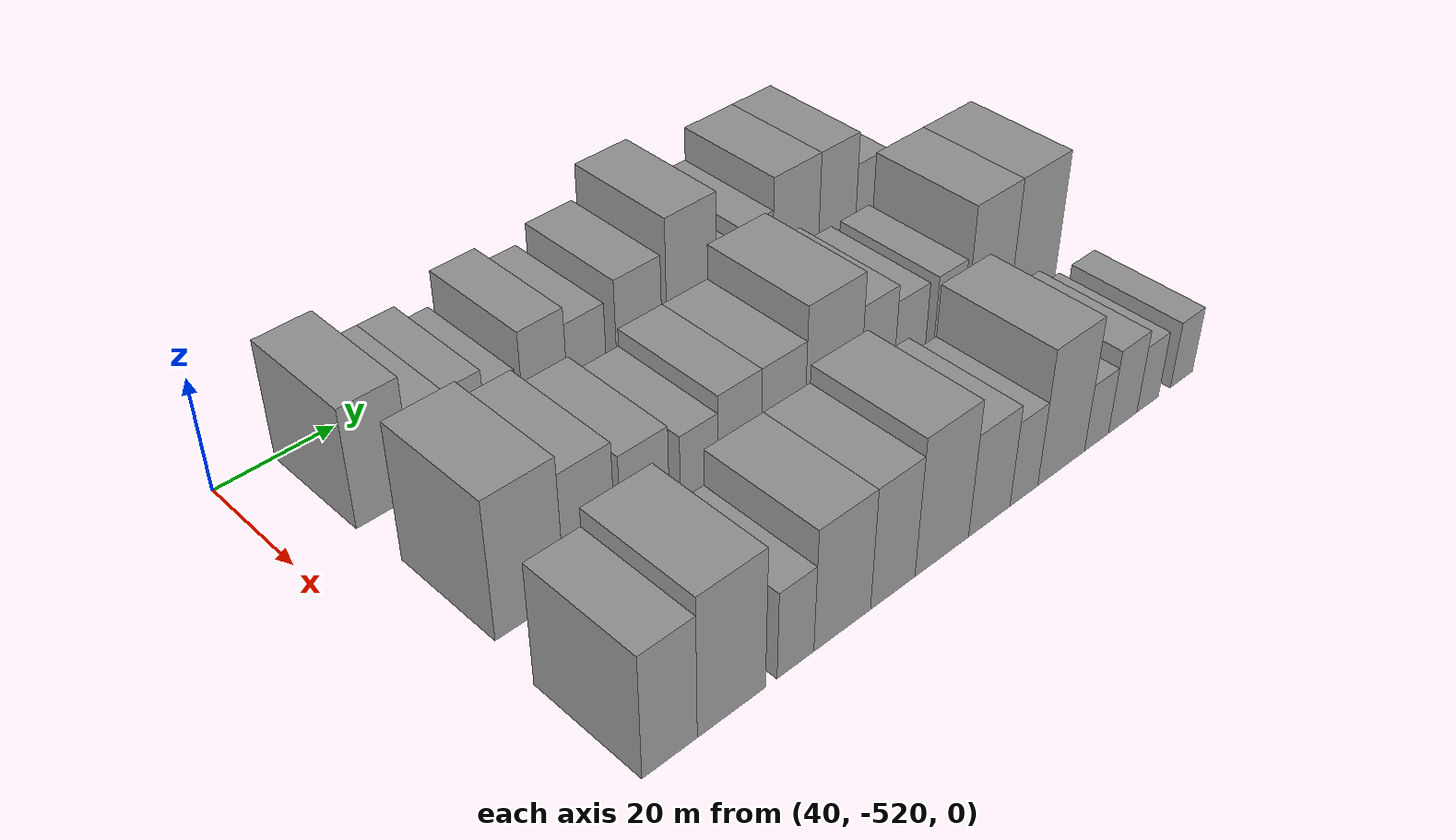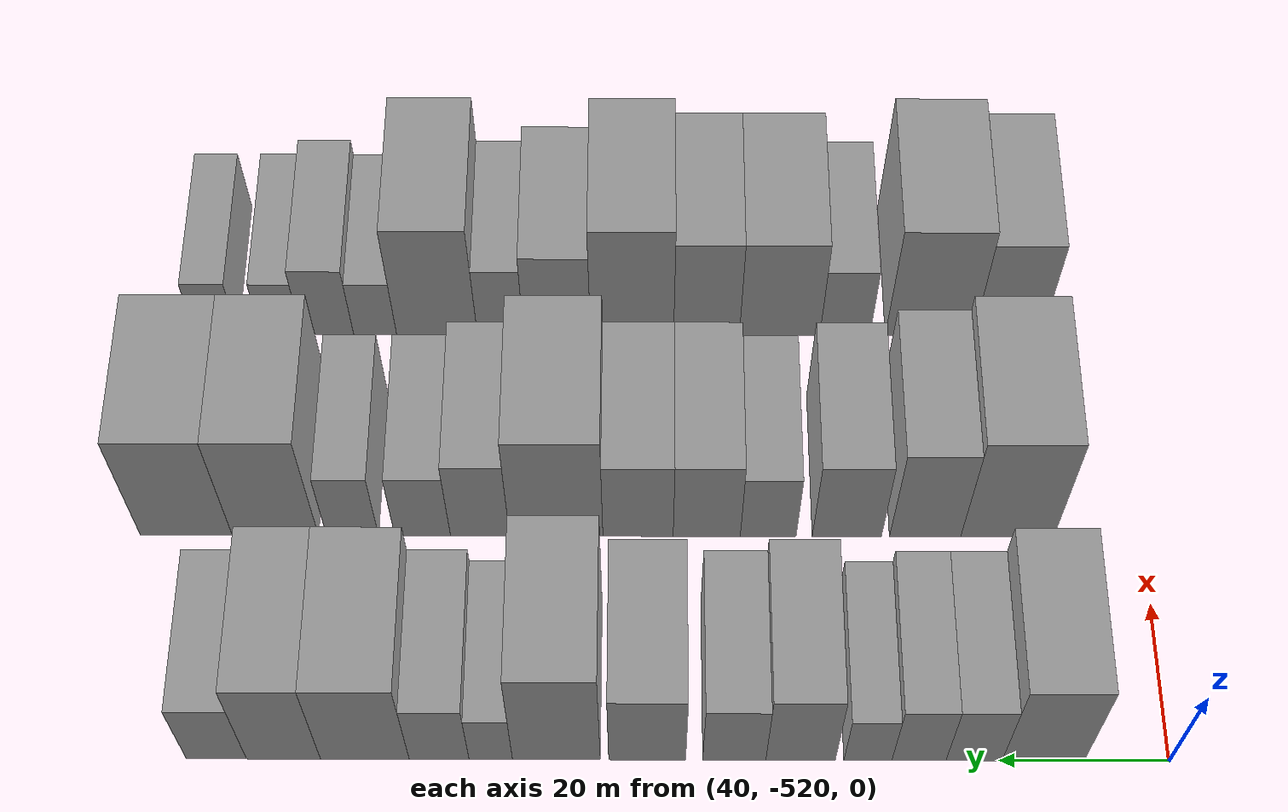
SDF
<sdf version="1.6">
 <world name="default">
  <model name="building_1">
   <static>1</static>
   <pose>50.0000 -505.1877 0 0.000000 0.000000 0.000000</pose>
   <link name="link">
    <pose>0 0 10.50 0 0 0</pose>
    <collision name="collision"><geometry><box><size>20.0000 9.6246 21.0000</size></box></geometry></collision>
    <visual name="visual">
     <cast_shadows>0</cast_shadows>
     <geometry><box><size>20.0000 9.6246 21.0000</size></box></geometry>
     <material>
      <script>
       <uri>model://grey_wall/materials/scripts</uri>
       <uri>model://grey_wall/materials/textures</uri>
       <name>vrc/grey_wall</name>
      </script>
     </material>
    </visual>
   </link>
  </model>
  <model name="building_2">
   <static>1</static>
   <pose>50.0000 -497.0915 0 0.000000 0.000000 0.000000</pose>
   <link name="link">
    <pose>0 0 7.50 0 0 0</pose>
    <collision name="collision"><geometry><box><size>20.0000 6.5677 15.0000</size></box></geometry></collision>
    <visual name="visual">
     <cast_shadows>0</cast_shadows>
     <geometry><box><size>20.0000 6.5677 15.0000</size></box></geometry>
     <material>
      <script>
       <uri>model://grey_wall/materials/scripts</uri>
       <uri>model://grey_wall/materials/textures</uri>
       <name>vrc/grey_wall</name>
      </script>
     </material>
    </visual>
   </link>
  </model>
  <model name="building_3">
   <static>1</static>
   <pose>50.0000 -490.6406 0 0.000000 0.000000 0.000000</pose>
   <link name="link">
    <pose>0 0 7.50 0 0 0</pose>
    <collision name="collision"><geometry><box><size>20.0000 6.3341 15.0000</size></box></geometry></collision>
    <visual name="visual">
     <cast_shadows>0</cast_shadows>
     <geometry><box><size>20.0000 6.3341 15.0000</size></box></geometry>
     <material>
      <script>
       <uri>model://grey_wall/materials/scripts</uri>
       <uri>model://grey_wall/materials/textures</uri>
       <name>vrc/grey_wall</name>
      </script>
     </material>
    </visual>
   </link>
  </model>
  <model name="building_4">
   <static>1</static>
   <pose>50.0000 -484.6623 0 0.000000 0.000000 0.000000</pose>
   <link name="link">
    <pose>0 0 6.00 0 0 0</pose>
    <collision name="collision"><geometry><box><size>20.0000 5.6226 12.0000</size></box></geometry></collision>
    <visual name="visual">
     <cast_shadows>0</cast_shadows>
     <geometry><box><size>20.0000 5.6226 12.0000</size></box></geometry>
     <material>
      <script>
       <uri>model://grey_wall/materials/scripts</uri>
       <uri>model://grey_wall/materials/textures</uri>
       <name>vrc/grey_wall</name>
      </script>
     </material>
    </visual>
   </link>
  </model>
  <model name="building_5">
   <static>1</static>
   <pose>50.0000 -476.7808 0 0.000000 0.000000 0.000000</pose>
   <link name="link">
    <pose>0 0 9.00 0 0 0</pose>
    <collision name="collision"><geometry><box><size>20.0000 8.1402 18.0000</size></box></geometry></collision>
    <visual name="visual">
     <cast_shadows>0</cast_shadows>
     <geometry><box><size>20.0000 8.1402 18.0000</size></box></geometry>
     <material>
      <script>
       <uri>model://grey_wall/materials/scripts</uri>
       <uri>model://grey_wall/materials/textures</uri>
       <name>vrc/grey_wall</name>
      </script>
     </material>
    </visual>
   </link>
  </model>
  <model name="building_6">
   <static>1</static>
   <pose>50.0000 -469.0146 0 0.000000 0.000000 0.000000</pose>
   <link name="link">
    <pose>0 0 7.50 0 0 0</pose>
    <collision name="collision"><geometry><box><size>20.0000 7.3923 15.0000</size></box></geometry></collision>
    <visual name="visual">
     <cast_shadows>0</cast_shadows>
     <geometry><box><size>20.0000 7.3923 15.0000</size></box></geometry>
     <material>
      <script>
       <uri>model://grey_wall/materials/scripts</uri>
       <uri>model://grey_wall/materials/textures</uri>
       <name>vrc/grey_wall</name>
      </script>
     </material>
    </visual>
   </link>
  </model>
  <model name="building_7">
   <static>1</static>
   <pose>50.0000 -458.8198 0 0.000000 0.000000 0.000000</pose>
   <link name="link">
    <pose>0 0 9.00 0 0 0</pose>
    <collision name="collision"><geometry><box><size>20.0000 8.9973 18.0000</size></box></geometry></collision>
    <visual name="visual">
     <cast_shadows>0</cast_shadows>
     <geometry><box><size>20.0000 8.9973 18.0000</size></box></geometry>
     <material>
      <script>
       <uri>model://grey_wall/materials/scripts</uri>
       <uri>model://grey_wall/materials/textures</uri>
       <name>vrc/grey_wall</name>
      </script>
     </material>
    </visual>
   </link>
  </model>
  <model name="building_8">
   <static>1</static>
   <pose>50.0000 -448.1830 0 0.000000 0.000000 0.000000</pose>
   <link name="link">
    <pose>0 0 12.00 0 0 0</pose>
    <collision name="collision"><geometry><box><size>20.0000 10.2763 24.0000</size></box></geometry></collision>
    <visual name="visual">
     <cast_shadows>0</cast_shadows>
     <geometry><box><size>20.0000 10.2763 24.0000</size></box></geometry>
     <material>
      <script>
       <uri>model://grey_wall/materials/scripts</uri>
       <uri>model://grey_wall/materials/textures</uri>
       <name>vrc/grey_wall</name>
      </script>
     </material>
    </visual>
   </link>
  </model>
  <model name="building_9">
   <static>1</static>
   <pose>50.0000 -440.5058 0 0.000000 0.000000 0.000000</pose>
   <link name="link">
    <pose>0 0 6.00 0 0 0</pose>
    <collision name="collision"><geometry><box><size>20.0000 5.0780 12.0000</size></box></geometry></collision>
    <visual name="visual">
     <cast_shadows>0</cast_shadows>
     <geometry><box><size>20.0000 5.0780 12.0000</size></box></geometry>
     <material>
      <script>
       <uri>model://grey_wall/materials/scripts</uri>
       <uri>model://grey_wall/materials/textures</uri>
       <name>vrc/grey_wall</name>
      </script>
     </material>
    </visual>
   </link>
  </model>
  <model name="building_10">
   <static>1</static>
   <pose>50.0000 -434.4570 0 0.000000 0.000000 0.000000</pose>
   <link name="link">
    <pose>0 0 7.50 0 0 0</pose>
    <collision name="collision"><geometry><box><size>20.0000 7.0197 15.0000</size></box></geometry></collision>
    <visual name="visual">
     <cast_shadows>0</cast_shadows>
     <geometry><box><size>20.0000 7.0197 15.0000</size></box></geometry>
     <material>
      <script>
       <uri>model://grey_wall/materials/scripts</uri>
       <uri>model://grey_wall/materials/textures</uri>
       <name>vrc/grey_wall</name>
      </script>
     </material>
    </visual>
   </link>
  </model>
  <model name="building_11">
   <static>1</static>
   <pose>50.0000 -425.7513 0 0.000000 0.000000 0.000000</pose>
   <link name="link">
    <pose>0 0 10.50 0 0 0</pose>
    <collision name="collision"><geometry><box><size>20.0000 10.3918 21.0000</size></box></geometry></collision>
    <visual name="visual">
     <cast_shadows>0</cast_shadows>
     <geometry><box><size>20.0000 10.3918 21.0000</size></box></geometry>
     <material>
      <script>
       <uri>model://grey_wall/materials/scripts</uri>
       <uri>model://grey_wall/materials/textures</uri>
       <name>vrc/grey_wall</name>
      </script>
     </material>
    </visual>
   </link>
  </model>
  <model name="building_12">
   <static>1</static>
   <pose>50.0000 -416.2189 0 0.000000 0.000000 0.000000</pose>
   <link name="link">
    <pose>0 0 10.50 0 0 0</pose>
    <collision name="collision"><geometry><box><size>20.0000 8.6729 21.0000</size></box></geometry></collision>
    <visual name="visual">
     <cast_shadows>0</cast_shadows>
     <geometry><box><size>20.0000 8.6729 21.0000</size></box></geometry>
     <material>
      <script>
       <uri>model://grey_wall/materials/scripts</uri>
       <uri>model://grey_wall/materials/textures</uri>
       <name>vrc/grey_wall</name>
      </script>
     </material>
    </visual>
   </link>
  </model>
  <model name="building_13">
   <static>1</static>
   <pose>50.0000 -408.3630 0 0.000000 0.000000 0.000000</pose>
   <link name="link">
    <pose>0 0 7.50 0 0 0</pose>
    <collision name="collision"><geometry><box><size>20.0000 7.0390 15.0000</size></box></geometry></collision>
    <visual name="visual">
     <cast_shadows>0</cast_shadows>
     <geometry><box><size>20.0000 7.0390 15.0000</size></box></geometry>
     <material>
      <script>
       <uri>model://grey_wall/materials/scripts</uri>
       <uri>model://grey_wall/materials/textures</uri>
       <name>vrc/grey_wall</name>
      </script>
     </material>
    </visual>
   </link>
  </model>
  <model name="building_115">
   <static>1</static>
   <pose>79.0000 -503.2548 0 0.000000 0.000000 0.000000</pose>
   <link name="link">
    <pose>0 0 12.00 0 0 0</pose>
    <collision name="collision"><geometry><box><size>20.0000 11.4904 24.0000</size></box></geometry></collision>
    <visual name="visual">
     <cast_shadows>0</cast_shadows>
     <geometry><box><size>20.0000 11.4904 24.0000</size></box></geometry>
     <material>
      <script>
       <uri>model://grey_wall/materials/scripts</uri>
       <uri>model://grey_wall/materials/textures</uri>
       <name>vrc/grey_wall</name>
      </script>
     </material>
    </visual>
   </link>
  </model>
  <model name="building_116">
   <static>1</static>
   <pose>79.0000 -493.1154 0 0.000000 0.000000 0.000000</pose>
   <link name="link">
    <pose>0 0 10.50 0 0 0</pose>
    <collision name="collision"><geometry><box><size>20.0000 8.7883 21.0000</size></box></geometry></collision>
    <visual name="visual">
     <cast_shadows>0</cast_shadows>
     <geometry><box><size>20.0000 8.7883 21.0000</size></box></geometry>
     <material>
      <script>
       <uri>model://grey_wall/materials/scripts</uri>
       <uri>model://grey_wall/materials/textures</uri>
       <name>vrc/grey_wall</name>
      </script>
     </material>
    </visual>
   </link>
  </model>
  <model name="building_117">
   <static>1</static>
   <pose>79.0000 -483.4463 0 0.000000 0.000000 0.000000</pose>
   <link name="link">
    <pose>0 0 9.00 0 0 0</pose>
    <collision name="collision"><geometry><box><size>20.0000 8.5500 18.0000</size></box></geometry></collision>
    <visual name="visual">
     <cast_shadows>0</cast_shadows>
     <geometry><box><size>20.0000 8.5500 18.0000</size></box></geometry>
     <material>
      <script>
       <uri>model://grey_wall/materials/scripts</uri>
       <uri>model://grey_wall/materials/textures</uri>
       <name>vrc/grey_wall</name>
      </script>
     </material>
    </visual>
   </link>
  </model>
  <model name="building_118">
   <static>1</static>
   <pose>79.0000 -473.7268 0 0.000000 0.000000 0.000000</pose>
   <link name="link">
    <pose>0 0 7.50 0 0 0</pose>
    <collision name="collision"><geometry><box><size>20.0000 6.8890 15.0000</size></box></geometry></collision>
    <visual name="visual">
     <cast_shadows>0</cast_shadows>
     <geometry><box><size>20.0000 6.8890 15.0000</size></box></geometry>
     <material>
      <script>
       <uri>model://grey_wall/materials/scripts</uri>
       <uri>model://grey_wall/materials/textures</uri>
       <name>vrc/grey_wall</name>
      </script>
     </material>
    </visual>
   </link>
  </model>
  <model name="building_119">
   <static>1</static>
   <pose>79.0000 -466.1343 0 0.000000 0.000000 0.000000</pose>
   <link name="link">
    <pose>0 0 9.00 0 0 0</pose>
    <collision name="collision"><geometry><box><size>20.0000 8.2961 18.0000</size></box></geometry></collision>
    <visual name="visual">
     <cast_shadows>0</cast_shadows>
     <geometry><box><size>20.0000 8.2961 18.0000</size></box></geometry>
     <material>
      <script>
       <uri>model://grey_wall/materials/scripts</uri>
       <uri>model://grey_wall/materials/textures</uri>
       <name>vrc/grey_wall</name>
      </script>
     </material>
    </visual>
   </link>
  </model>
  <model name="building_120">
   <static>1</static>
   <pose>79.0000 -457.6497 0 0.000000 0.000000 0.000000</pose>
   <link name="link">
    <pose>0 0 9.00 0 0 0</pose>
    <collision name="collision"><geometry><box><size>20.0000 8.6731 18.0000</size></box></geometry></collision>
    <visual name="visual">
     <cast_shadows>0</cast_shadows>
     <geometry><box><size>20.0000 8.6731 18.0000</size></box></geometry>
     <material>
      <script>
       <uri>model://grey_wall/materials/scripts</uri>
       <uri>model://grey_wall/materials/textures</uri>
       <name>vrc/grey_wall</name>
      </script>
     </material>
    </visual>
   </link>
  </model>
  <model name="building_121">
   <static>1</static>
   <pose>79.0000 -447.5465 0 0.000000 0.000000 0.000000</pose>
   <link name="link">
    <pose>0 0 12.00 0 0 0</pose>
    <collision name="collision"><geometry><box><size>20.0000 11.5332 24.0000</size></box></geometry></collision>
    <visual name="visual">
     <cast_shadows>0</cast_shadows>
     <geometry><box><size>20.0000 11.5332 24.0000</size></box></geometry>
     <material>
      <script>
       <uri>model://grey_wall/materials/scripts</uri>
       <uri>model://grey_wall/materials/textures</uri>
       <name>vrc/grey_wall</name>
      </script>
     </material>
    </visual>
   </link>
  </model>
  <model name="building_122">
   <static>1</static>
   <pose>79.0000 -438.1325 0 0.000000 0.000000 0.000000</pose>
   <link name="link">
    <pose>0 0 9.00 0 0 0</pose>
    <collision name="collision"><geometry><box><size>20.0000 7.2948 18.0000</size></box></geometry></collision>
    <visual name="visual">
     <cast_shadows>0</cast_shadows>
     <geometry><box><size>20.0000 7.2948 18.0000</size></box></geometry>
     <material>
      <script>
       <uri>model://grey_wall/materials/scripts</uri>
       <uri>model://grey_wall/materials/textures</uri>
       <name>vrc/grey_wall</name>
      </script>
     </material>
    </visual>
   </link>
  </model>
  <model name="building_123">
   <static>1</static>
   <pose>79.0000 -431.0398 0 0.000000 0.000000 0.000000</pose>
   <link name="link">
    <pose>0 0 7.50 0 0 0</pose>
    <collision name="collision"><geometry><box><size>20.0000 6.8907 15.0000</size></box></geometry></collision>
    <visual name="visual">
     <cast_shadows>0</cast_shadows>
     <geometry><box><size>20.0000 6.8907 15.0000</size></box></geometry>
     <material>
      <script>
       <uri>model://grey_wall/materials/scripts</uri>
       <uri>model://grey_wall/materials/textures</uri>
       <name>vrc/grey_wall</name>
      </script>
     </material>
    </visual>
   </link>
  </model>
  <model name="building_124">
   <static>1</static>
   <pose>79.0000 -422.3800 0 0.000000 0.000000 0.000000</pose>
   <link name="link">
    <pose>0 0 7.50 0 0 0</pose>
    <collision name="collision"><geometry><box><size>20.0000 6.4289 15.0000</size></box></geometry></collision>
    <visual name="visual">
     <cast_shadows>0</cast_shadows>
     <geometry><box><size>20.0000 6.4289 15.0000</size></box></geometry>
     <material>
      <script>
       <uri>model://grey_wall/materials/scripts</uri>
       <uri>model://grey_wall/materials/textures</uri>
       <name>vrc/grey_wall</name>
      </script>
     </material>
    </visual>
   </link>
  </model>
  <model name="building_125">
   <static>1</static>
   <pose>79.0000 -412.8363 0 0.000000 0.000000 0.000000</pose>
   <link name="link">
    <pose>0 0 12.00 0 0 0</pose>
    <collision name="collision"><geometry><box><size>20.0000 10.6585 24.0000</size></box></geometry></collision>
    <visual name="visual">
     <cast_shadows>0</cast_shadows>
     <geometry><box><size>20.0000 10.6585 24.0000</size></box></geometry>
     <material>
      <script>
       <uri>model://grey_wall/materials/scripts</uri>
       <uri>model://grey_wall/materials/textures</uri>
       <name>vrc/grey_wall</name>
      </script>
     </material>
    </visual>
   </link>
  </model>
  <model name="building_126">
   <static>1</static>
   <pose>79.0000 -401.8279 0 0.000000 0.000000 0.000000</pose>
   <link name="link">
    <pose>0 0 12.00 0 0 0</pose>
    <collision name="collision"><geometry><box><size>20.0000 11.3581 24.0000</size></box></geometry></collision>
    <visual name="visual">
     <cast_shadows>0</cast_shadows>
     <geometry><box><size>20.0000 11.3581 24.0000</size></box></geometry>
     <material>
      <script>
       <uri>model://grey_wall/materials/scripts</uri>
       <uri>model://grey_wall/materials/textures</uri>
       <name>vrc/grey_wall</name>
      </script>
     </material>
    </visual>
   </link>
  </model>
  <model name="building_229">
   <static>1</static>
   <pose>108.0000 -505.5721 0 0.000000 0.000000 0.000000</pose>
   <link name="link">
    <pose>0 0 10.50 0 0 0</pose>
    <collision name="collision"><geometry><box><size>20.0000 8.8557 21.0000</size></box></geometry></collision>
    <visual name="visual">
     <cast_shadows>0</cast_shadows>
     <geometry><box><size>20.0000 8.8557 21.0000</size></box></geometry>
     <material>
      <script>
       <uri>model://grey_wall/materials/scripts</uri>
       <uri>model://grey_wall/materials/textures</uri>
       <name>vrc/grey_wall</name>
      </script>
     </material>
    </visual>
   </link>
  </model>
  <model name="building_230">
   <static>1</static>
   <pose>108.0000 -495.4187 0 0.000000 0.000000 0.000000</pose>
   <link name="link">
    <pose>0 0 12.00 0 0 0</pose>
    <collision name="collision"><geometry><box><size>20.0000 11.4512 24.0000</size></box></geometry></collision>
    <visual name="visual">
     <cast_shadows>0</cast_shadows>
     <geometry><box><size>20.0000 11.4512 24.0000</size></box></geometry>
     <material>
      <script>
       <uri>model://grey_wall/materials/scripts</uri>
       <uri>model://grey_wall/materials/textures</uri>
       <name>vrc/grey_wall</name>
      </script>
     </material>
    </visual>
   </link>
  </model>
  <model name="building_231">
   <static>1</static>
   <pose>108.0000 -484.4381 0 0.000000 0.000000 0.000000</pose>
   <link name="link">
    <pose>0 0 7.50 0 0 0</pose>
    <collision name="collision"><geometry><box><size>20.0000 6.5100 15.0000</size></box></geometry></collision>
    <visual name="visual">
     <cast_shadows>0</cast_shadows>
     <geometry><box><size>20.0000 6.5100 15.0000</size></box></geometry>
     <material>
      <script>
       <uri>model://grey_wall/materials/scripts</uri>
       <uri>model://grey_wall/materials/textures</uri>
       <name>vrc/grey_wall</name>
      </script>
     </material>
    </visual>
   </link>
  </model>
  <model name="building_232">
   <static>1</static>
   <pose>108.0000 -475.9594 0 0.000000 0.000000 0.000000</pose>
   <link name="link">
    <pose>0 0 10.50 0 0 0</pose>
    <collision name="collision"><geometry><box><size>20.0000 10.4474 21.0000</size></box></geometry></collision>
    <visual name="visual">
     <cast_shadows>0</cast_shadows>
     <geometry><box><size>20.0000 10.4474 21.0000</size></box></geometry>
     <material>
      <script>
       <uri>model://grey_wall/materials/scripts</uri>
       <uri>model://grey_wall/materials/textures</uri>
       <name>vrc/grey_wall</name>
      </script>
     </material>
    </visual>
   </link>
  </model>
  <model name="building_233">
   <static>1</static>
   <pose>108.0000 -466.4582 0 0.000000 0.000000 0.000000</pose>
   <link name="link">
    <pose>0 0 10.50 0 0 0</pose>
    <collision name="collision"><geometry><box><size>20.0000 8.5550 21.0000</size></box></geometry></collision>
    <visual name="visual">
     <cast_shadows>0</cast_shadows>
     <geometry><box><size>20.0000 8.5550 21.0000</size></box></geometry>
     <material>
      <script>
       <uri>model://grey_wall/materials/scripts</uri>
       <uri>model://grey_wall/materials/textures</uri>
       <name>vrc/grey_wall</name>
      </script>
     </material>
    </visual>
   </link>
  </model>
  <model name="building_234">
   <static>1</static>
   <pose>108.0000 -456.7893 0 0.000000 0.000000 0.000000</pose>
   <link name="link">
    <pose>0 0 12.00 0 0 0</pose>
    <collision name="collision"><geometry><box><size>20.0000 10.7829 24.0000</size></box></geometry></collision>
    <visual name="visual">
     <cast_shadows>0</cast_shadows>
     <geometry><box><size>20.0000 10.7829 24.0000</size></box></geometry>
     <material>
      <script>
       <uri>model://grey_wall/materials/scripts</uri>
       <uri>model://grey_wall/materials/textures</uri>
       <name>vrc/grey_wall</name>
      </script>
     </material>
    </visual>
   </link>
  </model>
  <model name="building_235">
   <static>1</static>
   <pose>108.0000 -447.0462 0 0.000000 0.000000 0.000000</pose>
   <link name="link">
    <pose>0 0 9.00 0 0 0</pose>
    <collision name="collision"><geometry><box><size>20.0000 8.7033 18.0000</size></box></geometry></collision>
    <visual name="visual">
     <cast_shadows>0</cast_shadows>
     <geometry><box><size>20.0000 8.7033 18.0000</size></box></geometry>
     <material>
      <script>
       <uri>model://grey_wall/materials/scripts</uri>
       <uri>model://grey_wall/materials/textures</uri>
       <name>vrc/grey_wall</name>
      </script>
     </material>
    </visual>
   </link>
  </model>
  <model name="building_236">
   <static>1</static>
   <pose>108.0000 -439.6853 0 0.000000 0.000000 0.000000</pose>
   <link name="link">
    <pose>0 0 7.50 0 0 0</pose>
    <collision name="collision"><geometry><box><size>20.0000 6.0184 15.0000</size></box></geometry></collision>
    <visual name="visual">
     <cast_shadows>0</cast_shadows>
     <geometry><box><size>20.0000 6.0184 15.0000</size></box></geometry>
     <material>
      <script>
       <uri>model://grey_wall/materials/scripts</uri>
       <uri>model://grey_wall/materials/textures</uri>
       <name>vrc/grey_wall</name>
      </script>
     </material>
    </visual>
   </link>
  </model>
  <model name="building_237">
   <static>1</static>
   <pose>108.0000 -431.4216 0 0.000000 0.000000 0.000000</pose>
   <link name="link">
    <pose>0 0 12.00 0 0 0</pose>
    <collision name="collision"><geometry><box><size>20.0000 10.5092 24.0000</size></box></geometry></collision>
    <visual name="visual">
     <cast_shadows>0</cast_shadows>
     <geometry><box><size>20.0000 10.5092 24.0000</size></box></geometry>
     <material>
      <script>
       <uri>model://grey_wall/materials/scripts</uri>
       <uri>model://grey_wall/materials/textures</uri>
       <name>vrc/grey_wall</name>
      </script>
     </material>
    </visual>
   </link>
  </model>
  <model name="building_238">
   <static>1</static>
   <pose>108.0000 -423.3727 0 0.000000 0.000000 0.000000</pose>
   <link name="link">
    <pose>0 0 6.00 0 0 0</pose>
    <collision name="collision"><geometry><box><size>20.0000 5.5886 12.0000</size></box></geometry></collision>
    <visual name="visual">
     <cast_shadows>0</cast_shadows>
     <geometry><box><size>20.0000 5.5886 12.0000</size></box></geometry>
     <material>
      <script>
       <uri>model://grey_wall/materials/scripts</uri>
       <uri>model://grey_wall/materials/textures</uri>
       <name>vrc/grey_wall</name>
      </script>
     </material>
    </visual>
   </link>
  </model>
  <model name="building_239">
   <static>1</static>
   <pose>108.0000 -417.1980 0 0.000000 0.000000 0.000000</pose>
   <link name="link">
    <pose>0 0 7.50 0 0 0</pose>
    <collision name="collision"><geometry><box><size>20.0000 6.7609 15.0000</size></box></geometry></collision>
    <visual name="visual">
     <cast_shadows>0</cast_shadows>
     <geometry><box><size>20.0000 6.7609 15.0000</size></box></geometry>
     <material>
      <script>
       <uri>model://grey_wall/materials/scripts</uri>
       <uri>model://grey_wall/materials/textures</uri>
       <name>vrc/grey_wall</name>
      </script>
     </material>
    </visual>
   </link>
  </model>
  <model name="building_240">
   <static>1</static>
   <pose>108.0000 -411.1909 0 0.000000 0.000000 0.000000</pose>
   <link name="link">
    <pose>0 0 6.00 0 0 0</pose>
    <collision name="collision"><geometry><box><size>20.0000 5.2533 12.0000</size></box></geometry></collision>
    <visual name="visual">
     <cast_shadows>0</cast_shadows>
     <geometry><box><size>20.0000 5.2533 12.0000</size></box></geometry>
     <material>
      <script>
       <uri>model://grey_wall/materials/scripts</uri>
       <uri>model://grey_wall/materials/textures</uri>
       <name>vrc/grey_wall</name>
      </script>
     </material>
    </visual>
   </link>
  </model>
  <model name="building_241">
   <static>1</static>
   <pose>108.0000 -402.7758 0 0.000000 0.000000 0.000000</pose>
   <link name="link">
    <pose>0 0 6.00 0 0 0</pose>
    <collision name="collision"><geometry><box><size>20.0000 5.5769 12.0000</size></box></geometry></collision>
    <visual name="visual">
     <cast_shadows>0</cast_shadows>
     <geometry><box><size>20.0000 5.5769 12.0000</size></box></geometry>
     <material>
      <script>
       <uri>model://grey_wall/materials/scripts</uri>
       <uri>model://grey_wall/materials/textures</uri>
       <name>vrc/grey_wall</name>
      </script>
     </material>
    </visual>
   </link>
  </model>
 </world>
</sdf>
